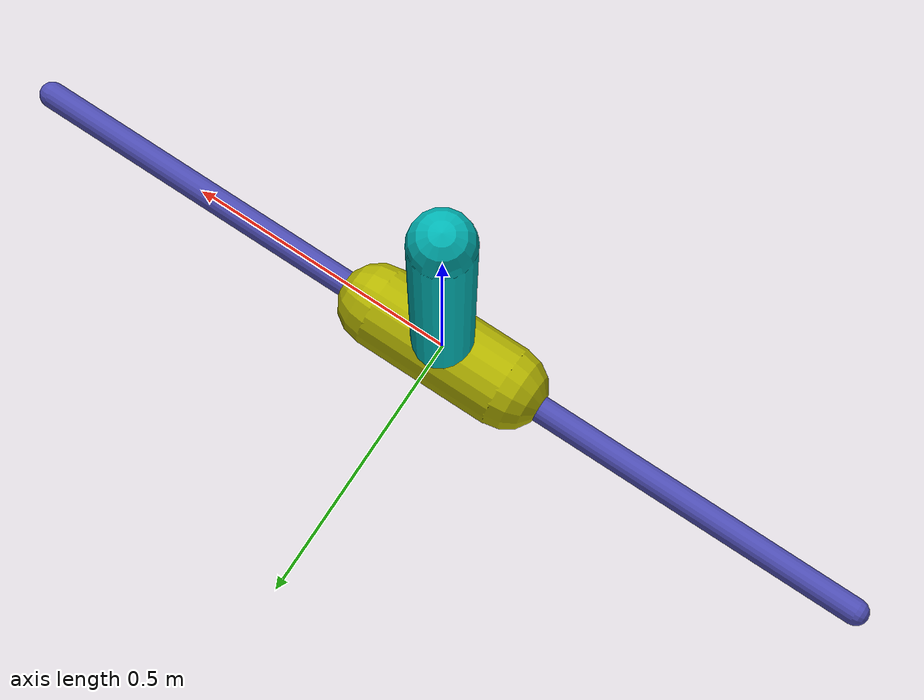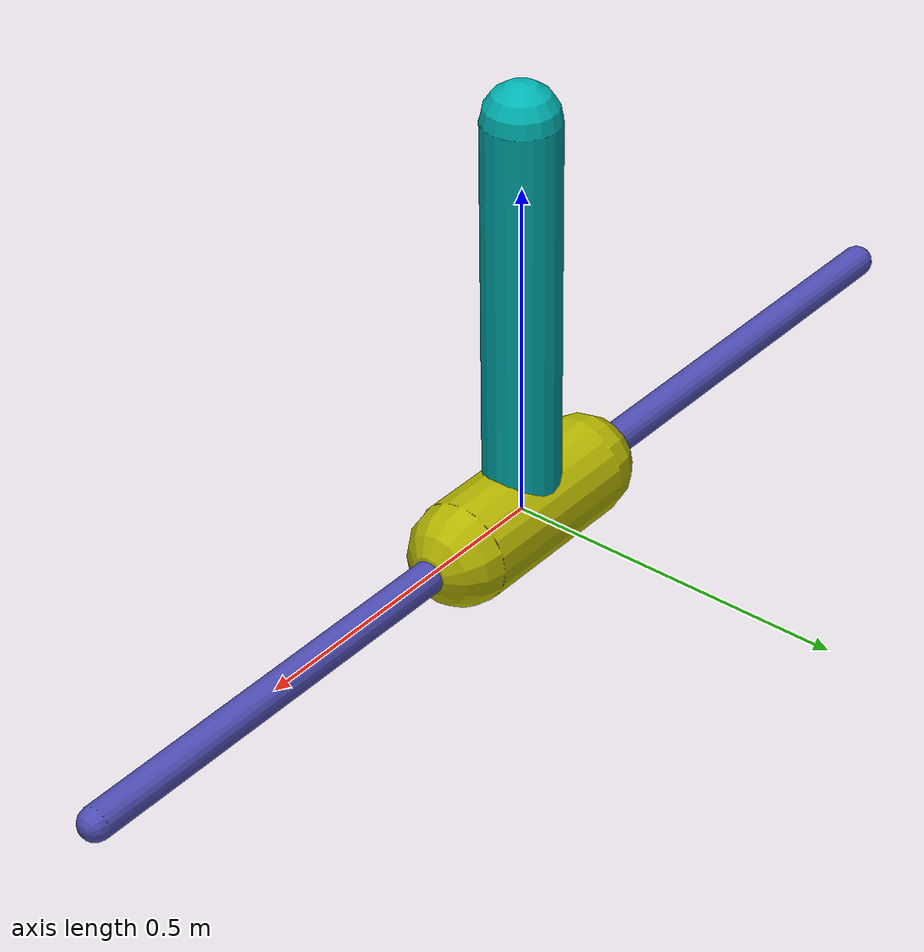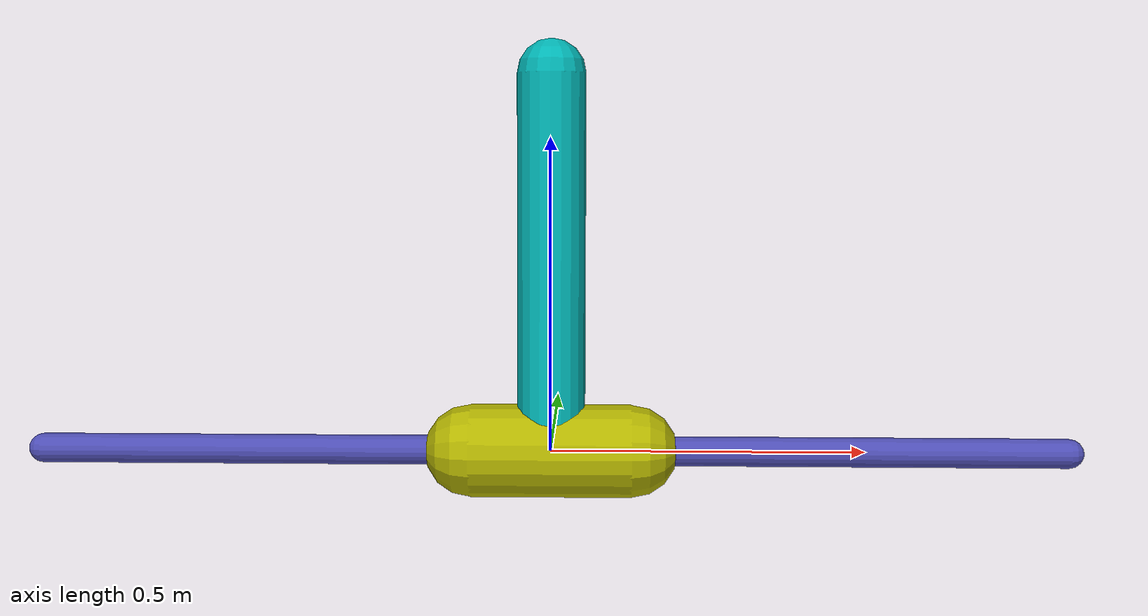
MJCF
<?xml version="1.0" encoding="utf-8"?>
<mujoco model="inverted pendulum">
	<compiler inertiafromgeom="true"></compiler>
	<default>
		<joint armature="0" damping="0.8798219220660213" limited="true"></joint>
		<geom contype="0" friction="0.904682521519802 0.07989106174092601 0.0967798834208976" rgba="0.7 0.7 0 1"></geom>
		<tendon></tendon>
		<motor ctrlrange="-3 3"></motor>
	</default>
	<option gravity="0 0 -9.81" integrator="RK4" timestep="0.02"></option>
	<size nstack="3000"></size>
	<worldbody>
		<geom name="rail" pos="0 0 0" quat="0.707 0 0.707 0" rgba="0.3 0.3 0.7 1" size="0.023544622967896462 0.8205846449378953" type="capsule"></geom>
		<body name="cart" pos="0 0 0">
			<joint axis="1 0 0" limited="true" name="slider" pos="0 0 0" range="-1 1" type="slide"></joint>
			<geom name="cart" pos="0 0 0" quat="0.707 0 0.707 0" size="0.07417636028431943 0.12829351188316998" type="capsule"></geom>
			<body name="pole" pos="0 0 0">
				<joint axis="0 1 0" name="hinge" pos="0 0 0" limited="false" range="-90 90" type="hinge"></joint>
				<geom fromto="0 0 0 0.001 0 0.6" name="cpole" rgba="0 0.7 0.7 1" size="0.05418597688933082 0.2986145309027027" type="capsule"></geom>
			</body>
		</body>
	</worldbody>
	<actuator>
		<motor gear="100" joint="slider" name="slide"></motor>
	</actuator>
</mujoco>
